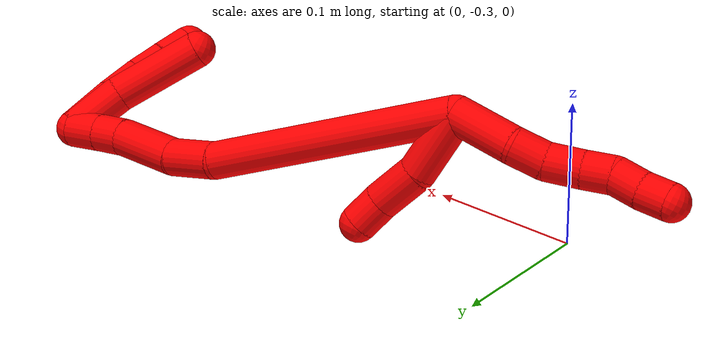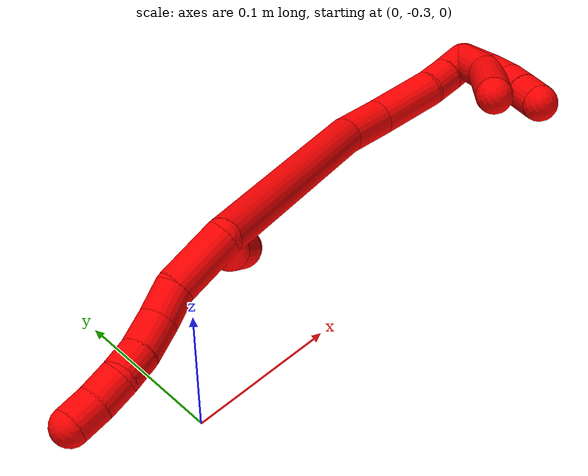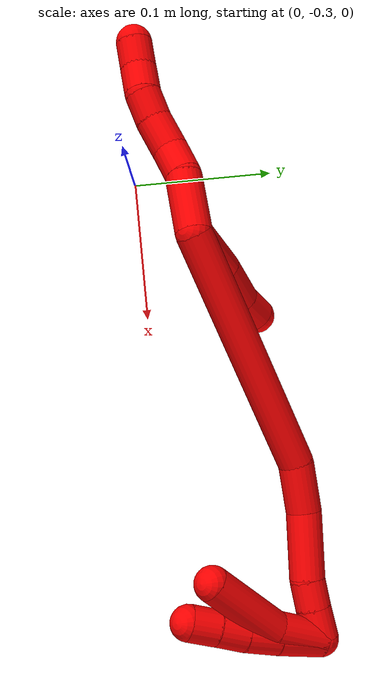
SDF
<sdf version="1.7">
 <world name="default">
  <model name="2">
   <static>0</static>
   <link name="2">
    <collision name="collision-cylinder-e_1_2_8">
     <pose>-0.020827 -0.005021 0.000419 1.48746 -1.33346 -1.25324</pose>
     <geometry><cylinder><radius>0.0125</radius><length>0.042856</length></cylinder></geometry>
     <surface>
      <friction><ode><mu>1.16</mu><mu2>1.16</mu2><slip1>0</slip1><slip2>0</slip2></ode></friction>
      <contact><ode><kp>1e+06</kp><kd>1</kd><max_vel>0</max_vel><min_depth>0.001</min_depth></ode></contact>
     </surface>
    </collision>
    <visual name="visual-cylinder-e_1_2_8">
     <pose>-0.020827 -0.005021 0.000419 1.48746 -1.33346 -1.25324</pose>
     <geometry><cylinder><radius>0.0125</radius><length>0.042856</length></cylinder></geometry>
     <material><ambient>1 0 0 1</ambient></material>
    </visual>
    <collision name="collision-cylinder-e_2_8_9">
     <pose>-0.052821 -0.00957 0.000661 -1.93104 -1.52571 1.88851</pose>
     <geometry><cylinder><radius>0.0125</radius><length>0.022357</length></cylinder></geometry>
     <surface>
      <friction><ode><mu>1.16</mu><mu2>1.16</mu2><slip1>0</slip1><slip2>0</slip2></ode></friction>
      <contact><ode><kp>1e+06</kp><kd>1</kd><max_vel>0</max_vel><min_depth>0.001</min_depth></ode></contact>
     </surface>
    </collision>
    <visual name="visual-cylinder-e_2_8_9">
     <pose>-0.052821 -0.00957 0.000661 -1.93104 -1.52571 1.88851</pose>
     <geometry><cylinder><radius>0.0125</radius><length>0.022357</length></cylinder></geometry>
     <material><ambient>1 0 0 1</ambient></material>
    </visual>
    <collision name="collision-cylinder-e_3_9_10">
     <pose>-0.075788 -0.009599 -0.002636 2.98227 -1.30912 -2.93429</pose>
     <geometry><cylinder><radius>0.0125</radius><length>0.02443</length></cylinder></geometry>
     <surface>
      <friction><ode><mu>1.16</mu><mu2>1.16</mu2><slip1>0</slip1><slip2>0</slip2></ode></friction>
      <contact><ode><kp>1e+06</kp><kd>1</kd><max_vel>0</max_vel><min_depth>0.001</min_depth></ode></contact>
     </surface>
    </collision>
    <visual name="visual-cylinder-e_3_9_10">
     <pose>-0.075788 -0.009599 -0.002636 2.98227 -1.30912 -2.93429</pose>
     <geometry><cylinder><radius>0.0125</radius><length>0.02443</length></cylinder></geometry>
     <material><ambient>1 0 0 1</ambient></material>
    </visual>
    <collision name="collision-cylinder-e_4_10_11">
     <pose>-0.097149 -0.011971 -0.008637 2.56568 -1.22599 -2.34448</pose>
     <geometry><cylinder><radius>0.0125</radius><length>0.02032</length></cylinder></geometry>
     <surface>
      <friction><ode><mu>1.16</mu><mu2>1.16</mu2><slip1>0</slip1><slip2>0</slip2></ode></friction>
      <contact><ode><kp>1e+06</kp><kd>1</kd><max_vel>0</max_vel><min_depth>0.001</min_depth></ode></contact>
     </surface>
    </collision>
    <visual name="visual-cylinder-e_4_10_11">
     <pose>-0.097149 -0.011971 -0.008637 2.56568 -1.22599 -2.34448</pose>
     <geometry><cylinder><radius>0.0125</radius><length>0.02032</length></cylinder></geometry>
     <material><ambient>1 0 0 1</ambient></material>
    </visual>
    <collision name="collision-cylinder-e_5_11_12">
     <pose>-0.116473 -0.016067 -0.011251 1.45176 -1.34507 -1.23057</pose>
     <geometry><cylinder><radius>0.0125</radius><length>0.020032</length></cylinder></geometry>
     <surface>
      <friction><ode><mu>1.16</mu><mu2>1.16</mu2><slip1>0</slip1><slip2>0</slip2></ode></friction>
      <contact><ode><kp>1e+06</kp><kd>1</kd><max_vel>0</max_vel><min_depth>0.001</min_depth></ode></contact>
     </surface>
    </collision>
    <visual name="visual-cylinder-e_5_11_12">
     <pose>-0.116473 -0.016067 -0.011251 1.45176 -1.34507 -1.23057</pose>
     <geometry><cylinder><radius>0.0125</radius><length>0.020032</length></cylinder></geometry>
     <material><ambient>1 0 0 1</ambient></material>
    </visual>
    <collision name="collision-cylinder-e_6_12_6">
     <pose>-0.135708 -0.021387 -0.011842 1.84118 -1.24407 -1.51187</pose>
     <geometry><cylinder><radius>0.0125</radius><length>0.020006</length></cylinder></geometry>
     <surface>
      <friction><ode><mu>1.16</mu><mu2>1.16</mu2><slip1>0</slip1><slip2>0</slip2></ode></friction>
      <contact><ode><kp>1e+06</kp><kd>1</kd><max_vel>0</max_vel><min_depth>0.001</min_depth></ode></contact>
     </surface>
    </collision>
    <visual name="visual-cylinder-e_6_12_6">
     <pose>-0.135708 -0.021387 -0.011842 1.84118 -1.24407 -1.51187</pose>
     <geometry><cylinder><radius>0.0125</radius><length>0.020006</length></cylinder></geometry>
     <material><ambient>1 0 0 1</ambient></material>
    </visual>
    <collision name="collision-cylinder-e_1_2_13">
     <pose>0.003701 0.006905 0.022001 -0.304131 0.159147 -0.024439</pose>
     <geometry><cylinder><radius>0.0125</radius><length>0.046709</length></cylinder></geometry>
     <surface>
      <friction><ode><mu>1.16</mu><mu2>1.16</mu2><slip1>0</slip1><slip2>0</slip2></ode></friction>
      <contact><ode><kp>1e+06</kp><kd>1</kd><max_vel>0</max_vel><min_depth>0.001</min_depth></ode></contact>
     </surface>
    </collision>
    <visual name="visual-cylinder-e_1_2_13">
     <pose>0.003701 0.006905 0.022001 -0.304131 0.159147 -0.024439</pose>
     <geometry><cylinder><radius>0.0125</radius><length>0.046709</length></cylinder></geometry>
     <material><ambient>1 0 0 1</ambient></material>
    </visual>
    <collision name="collision-cylinder-e_2_13_14">
     <pose>0.014252 0.018958 0.057773 -0.357689 0.436008 -0.08005</pose>
     <geometry><cylinder><radius>0.0125</radius><length>0.032437</length></cylinder></geometry>
     <surface>
      <friction><ode><mu>1.16</mu><mu2>1.16</mu2><slip1>0</slip1><slip2>0</slip2></ode></friction>
      <contact><ode><kp>1e+06</kp><kd>1</kd><max_vel>0</max_vel><min_depth>0.001</min_depth></ode></contact>
     </surface>
    </collision>
    <visual name="visual-cylinder-e_2_13_14">
     <pose>0.014252 0.018958 0.057773 -0.357689 0.436008 -0.08005</pose>
     <geometry><cylinder><radius>0.0125</radius><length>0.032437</length></cylinder></geometry>
     <material><ambient>1 0 0 1</ambient></material>
    </visual>
    <collision name="collision-cylinder-e_3_14_5">
     <pose>0.024635 0.025582 0.081242 -0.151092 0.345748 -0.026432</pose>
     <geometry><cylinder><radius>0.0125</radius><length>0.020854</length></cylinder></geometry>
     <surface>
      <friction><ode><mu>1.16</mu><mu2>1.16</mu2><slip1>0</slip1><slip2>0</slip2></ode></friction>
      <contact><ode><kp>1e+06</kp><kd>1</kd><max_vel>0</max_vel><min_depth>0.001</min_depth></ode></contact>
     </surface>
    </collision>
    <visual name="visual-cylinder-e_3_14_5">
     <pose>0.024635 0.025582 0.081242 -0.151092 0.345748 -0.026432</pose>
     <geometry><cylinder><radius>0.0125</radius><length>0.020854</length></cylinder></geometry>
     <material><ambient>1 0 0 1</ambient></material>
    </visual>
    <collision name="collision-cylinder-e_1_2_15">
     <pose>0.067342 0.0259 0.050114 -0.477006 0.873496 -0.226026</pose>
     <geometry><cylinder><radius>0.0125</radius><length>0.175695</length></cylinder></geometry>
     <surface>
      <friction><ode><mu>1.16</mu><mu2>1.16</mu2><slip1>0</slip1><slip2>0</slip2></ode></friction>
      <contact><ode><kp>1e+06</kp><kd>1</kd><max_vel>0</max_vel><min_depth>0.001</min_depth></ode></contact>
     </surface>
    </collision>
    <visual name="visual-cylinder-e_1_2_15">
     <pose>0.067342 0.0259 0.050114 -0.477006 0.873496 -0.226026</pose>
     <geometry><cylinder><radius>0.0125</radius><length>0.175695</length></cylinder></geometry>
     <material><ambient>1 0 0 1</ambient></material>
    </visual>
    <collision name="collision-cylinder-e_2_15_16">
     <pose>0.149126 0.059767 0.106166 -0.930427 0.968128 -0.51608</pose>
     <geometry><cylinder><radius>0.0125</radius><length>0.03506</length></cylinder></geometry>
     <surface>
      <friction><ode><mu>1.16</mu><mu2>1.16</mu2><slip1>0</slip1><slip2>0</slip2></ode></friction>
      <contact><ode><kp>1e+06</kp><kd>1</kd><max_vel>0</max_vel><min_depth>0.001</min_depth></ode></contact>
     </surface>
    </collision>
    <visual name="visual-cylinder-e_2_15_16">
     <pose>0.149126 0.059767 0.106166 -0.930427 0.968128 -0.51608</pose>
     <geometry><cylinder><radius>0.0125</radius><length>0.03506</length></cylinder></geometry>
     <material><ambient>1 0 0 1</ambient></material>
    </visual>
    <collision name="collision-cylinder-e_3_16_17">
     <pose>0.184096 0.078755 0.11498 -1.31542 1.06428 -0.853696</pose>
     <geometry><cylinder><radius>0.0125</radius><length>0.046951</length></cylinder></geometry>
     <surface>
      <friction><ode><mu>1.16</mu><mu2>1.16</mu2><slip1>0</slip1><slip2>0</slip2></ode></friction>
      <contact><ode><kp>1e+06</kp><kd>1</kd><max_vel>0</max_vel><min_depth>0.001</min_depth></ode></contact>
     </surface>
    </collision>
    <visual name="visual-cylinder-e_3_16_17">
     <pose>0.184096 0.078755 0.11498 -1.31542 1.06428 -0.853696</pose>
     <geometry><cylinder><radius>0.0125</radius><length>0.046951</length></cylinder></geometry>
     <material><ambient>1 0 0 1</ambient></material>
    </visual>
    <collision name="collision-cylinder-e_4_17_18">
     <pose>0.213565 0.093513 0.120536 -0.948888 1.09566 -0.607303</pose>
     <geometry><cylinder><radius>0.0125</radius><length>0.020109</length></cylinder></geometry>
     <surface>
      <friction><ode><mu>1.16</mu><mu2>1.16</mu2><slip1>0</slip1><slip2>0</slip2></ode></friction>
      <contact><ode><kp>1e+06</kp><kd>1</kd><max_vel>0</max_vel><min_depth>0.001</min_depth></ode></contact>
     </surface>
    </collision>
    <visual name="visual-cylinder-e_4_17_18">
     <pose>0.213565 0.093513 0.120536 -0.948888 1.09566 -0.607303</pose>
     <geometry><cylinder><radius>0.0125</radius><length>0.020109</length></cylinder></geometry>
     <material><ambient>1 0 0 1</ambient></material>
    </visual>
    <collision name="collision-cylinder-e_5_18_1">
     <pose>0.232415 0.101074 0.126412 -0.874562 1.10485 -0.561131</pose>
     <geometry><cylinder><radius>0.0125</radius><length>0.022184</length></cylinder></geometry>
     <surface>
      <friction><ode><mu>1.16</mu><mu2>1.16</mu2><slip1>0</slip1><slip2>0</slip2></ode></friction>
      <contact><ode><kp>1e+06</kp><kd>1</kd><max_vel>0</max_vel><min_depth>0.001</min_depth></ode></contact>
     </surface>
    </collision>
    <visual name="visual-cylinder-e_5_18_1">
     <pose>0.232415 0.101074 0.126412 -0.874562 1.10485 -0.561131</pose>
     <geometry><cylinder><radius>0.0125</radius><length>0.022184</length></cylinder></geometry>
     <material><ambient>1 0 0 1</ambient></material>
    </visual>
    <collision name="collision-cylinder-e_1_1_19">
     <pose>0.235185 0.110421 0.112767 -2.82472 -0.382942 1.7629</pose>
     <geometry><cylinder><radius>0.0125</radius><length>0.038215</length></cylinder></geometry>
     <surface>
      <friction><ode><mu>1.16</mu><mu2>1.16</mu2><slip1>0</slip1><slip2>0</slip2></ode></friction>
      <contact><ode><kp>1e+06</kp><kd>1</kd><max_vel>0</max_vel><min_depth>0.001</min_depth></ode></contact>
     </surface>
    </collision>
    <visual name="visual-cylinder-e_1_1_19">
     <pose>0.235185 0.110421 0.112767 -2.82472 -0.382942 1.7629</pose>
     <geometry><cylinder><radius>0.0125</radius><length>0.038215</length></cylinder></geometry>
     <material><ambient>1 0 0 1</ambient></material>
    </visual>
    <collision name="collision-cylinder-e_2_19_4">
     <pose>0.210815 0.11597 0.070285 -3.14054 -0.591699 3.13813</pose>
     <geometry><cylinder><radius>0.0125</radius><length>0.061785</length></cylinder></geometry>
     <surface>
      <friction><ode><mu>1.16</mu><mu2>1.16</mu2><slip1>0</slip1><slip2>0</slip2></ode></friction>
      <contact><ode><kp>1e+06</kp><kd>1</kd><max_vel>0</max_vel><min_depth>0.001</min_depth></ode></contact>
     </surface>
    </collision>
    <visual name="visual-cylinder-e_2_19_4">
     <pose>0.210815 0.11597 0.070285 -3.14054 -0.591699 3.13813</pose>
     <geometry><cylinder><radius>0.0125</radius><length>0.061785</length></cylinder></geometry>
     <material><ambient>1 0 0 1</ambient></material>
    </visual>
    <collision name="collision-cylinder-e_1_1_20">
     <pose>0.237484 0.11219 0.114906 -2.68116 -0.286853 1.10448</pose>
     <geometry><cylinder><radius>0.0125</radius><length>0.03422</length></cylinder></geometry>
     <surface>
      <friction><ode><mu>1.16</mu><mu2>1.16</mu2><slip1>0</slip1><slip2>0</slip2></ode></friction>
      <contact><ode><kp>1e+06</kp><kd>1</kd><max_vel>0</max_vel><min_depth>0.001</min_depth></ode></contact>
     </surface>
    </collision>
    <visual name="visual-cylinder-e_1_1_20">
     <pose>0.237484 0.11219 0.114906 -2.68116 -0.286853 1.10448</pose>
     <geometry><cylinder><radius>0.0125</radius><length>0.03422</length></cylinder></geometry>
     <material><ambient>1 0 0 1</ambient></material>
    </visual>
    <collision name="collision-cylinder-e_2_20_21">
     <pose>0.228562 0.124519 0.0899 -2.68695 -0.341817 1.28203</pose>
     <geometry><cylinder><radius>0.0125</radius><length>0.024349</length></cylinder></geometry>
     <surface>
      <friction><ode><mu>1.16</mu><mu2>1.16</mu2><slip1>0</slip1><slip2>0</slip2></ode></friction>
      <contact><ode><kp>1e+06</kp><kd>1</kd><max_vel>0</max_vel><min_depth>0.001</min_depth></ode></contact>
     </surface>
    </collision>
    <visual name="visual-cylinder-e_2_20_21">
     <pose>0.228562 0.124519 0.0899 -2.68695 -0.341817 1.28203</pose>
     <geometry><cylinder><radius>0.0125</radius><length>0.024349</length></cylinder></geometry>
     <material><ambient>1 0 0 1</ambient></material>
    </visual>
    <collision name="collision-cylinder-e_3_21_22">
     <pose>0.220188 0.13336 0.070883 -2.72989 -0.424214 1.60162</pose>
     <geometry><cylinder><radius>0.0125</radius><length>0.020862</length></cylinder></geometry>
     <surface>
      <friction><ode><mu>1.16</mu><mu2>1.16</mu2><slip1>0</slip1><slip2>0</slip2></ode></friction>
      <contact><ode><kp>1e+06</kp><kd>1</kd><max_vel>0</max_vel><min_depth>0.001</min_depth></ode></contact>
     </surface>
    </collision>
    <visual name="visual-cylinder-e_3_21_22">
     <pose>0.220188 0.13336 0.070883 -2.72989 -0.424214 1.60162</pose>
     <geometry><cylinder><radius>0.0125</radius><length>0.020862</length></cylinder></geometry>
     <material><ambient>1 0 0 1</ambient></material>
    </visual>
    <collision name="collision-cylinder-e_4_22_3">
     <pose>0.211639 0.141349 0.053795 -2.67821 -0.426597 1.48539</pose>
     <geometry><cylinder><radius>0.0125</radius><length>0.020569</length></cylinder></geometry>
     <surface>
      <friction><ode><mu>1.16</mu><mu2>1.16</mu2><slip1>0</slip1><slip2>0</slip2></ode></friction>
      <contact><ode><kp>1e+06</kp><kd>1</kd><max_vel>0</max_vel><min_depth>0.001</min_depth></ode></contact>
     </surface>
    </collision>
    <visual name="visual-cylinder-e_4_22_3">
     <pose>0.211639 0.141349 0.053795 -2.67821 -0.426597 1.48539</pose>
     <geometry><cylinder><radius>0.0125</radius><length>0.020569</length></cylinder></geometry>
     <material><ambient>1 0 0 1</ambient></material>
    </visual>
    <collision name="collision-sphere-3">
     <pose>0.207383 0.145534 0.045419 0 -0 0</pose>
     <geometry><sphere><radius>0.0125</radius></sphere></geometry>
     <surface>
      <friction><ode><mu>1.16</mu><mu2>1.16</mu2><slip1>0</slip1><slip2>0</slip2></ode></friction>
      <contact><ode><kp>1e+06</kp><kd>1</kd><max_vel>0</max_vel><min_depth>0.001</min_depth></ode></contact>
     </surface>
    </collision>
    <visual name="visual-sphere-3">
     <pose>0.207383 0.145534 0.045419 0 -0 0</pose>
     <geometry><sphere><radius>0.0125</radius></sphere></geometry>
     <material><ambient>1 0 0 1</ambient></material>
    </visual>
    <collision name="collision-sphere-22">
     <pose>0.215894 0.137164 0.06217 0 -0 0</pose>
     <geometry><sphere><radius>0.0125</radius></sphere></geometry>
     <surface>
      <friction><ode><mu>1.16</mu><mu2>1.16</mu2><slip1>0</slip1><slip2>0</slip2></ode></friction>
      <contact><ode><kp>1e+06</kp><kd>1</kd><max_vel>0</max_vel><min_depth>0.001</min_depth></ode></contact>
     </surface>
    </collision>
    <visual name="visual-sphere-22">
     <pose>0.215894 0.137164 0.06217 0 -0 0</pose>
     <geometry><sphere><radius>0.0125</radius></sphere></geometry>
     <material><ambient>1 0 0 1</ambient></material>
    </visual>
    <collision name="collision-sphere-21">
     <pose>0.224481 0.129556 0.079595 0 -0 0</pose>
     <geometry><sphere><radius>0.0125</radius></sphere></geometry>
     <surface>
      <friction><ode><mu>1.16</mu><mu2>1.16</mu2><slip1>0</slip1><slip2>0</slip2></ode></friction>
      <contact><ode><kp>1e+06</kp><kd>1</kd><max_vel>0</max_vel><min_depth>0.001</min_depth></ode></contact>
     </surface>
    </collision>
    <visual name="visual-sphere-21">
     <pose>0.224481 0.129556 0.079595 0 -0 0</pose>
     <geometry><sphere><radius>0.0125</radius></sphere></geometry>
     <material><ambient>1 0 0 1</ambient></material>
    </visual>
    <collision name="collision-sphere-20">
     <pose>0.232643 0.119482 0.100205 0 -0 0</pose>
     <geometry><sphere><radius>0.0125</radius></sphere></geometry>
     <surface>
      <friction><ode><mu>1.16</mu><mu2>1.16</mu2><slip1>0</slip1><slip2>0</slip2></ode></friction>
      <contact><ode><kp>1e+06</kp><kd>1</kd><max_vel>0</max_vel><min_depth>0.001</min_depth></ode></contact>
     </surface>
    </collision>
    <visual name="visual-sphere-20">
     <pose>0.232643 0.119482 0.100205 0 -0 0</pose>
     <geometry><sphere><radius>0.0125</radius></sphere></geometry>
     <material><ambient>1 0 0 1</ambient></material>
    </visual>
    <collision name="collision-sphere-4">
     <pose>0.193584 0.115997 0.044644 0 -0 0</pose>
     <geometry><sphere><radius>0.0125</radius></sphere></geometry>
     <surface>
      <friction><ode><mu>1.16</mu><mu2>1.16</mu2><slip1>0</slip1><slip2>0</slip2></ode></friction>
      <contact><ode><kp>1e+06</kp><kd>1</kd><max_vel>0</max_vel><min_depth>0.001</min_depth></ode></contact>
     </surface>
    </collision>
    <visual name="visual-sphere-4">
     <pose>0.193584 0.115997 0.044644 0 -0 0</pose>
     <geometry><sphere><radius>0.0125</radius></sphere></geometry>
     <material><ambient>1 0 0 1</ambient></material>
    </visual>
    <collision name="collision-sphere-12">
     <pose>-0.126234 -0.018293 -0.010985 0 -0 0</pose>
     <geometry><sphere><radius>0.0125</radius></sphere></geometry>
     <surface>
      <friction><ode><mu>1.16</mu><mu2>1.16</mu2><slip1>0</slip1><slip2>0</slip2></ode></friction>
      <contact><ode><kp>1e+06</kp><kd>1</kd><max_vel>0</max_vel><min_depth>0.001</min_depth></ode></contact>
     </surface>
    </collision>
    <visual name="visual-sphere-12">
     <pose>-0.126234 -0.018293 -0.010985 0 -0 0</pose>
     <geometry><sphere><radius>0.0125</radius></sphere></geometry>
     <material><ambient>1 0 0 1</ambient></material>
    </visual>
    <collision name="collision-sphere-11">
     <pose>-0.106711 -0.013841 -0.011517 0 -0 0</pose>
     <geometry><sphere><radius>0.0125</radius></sphere></geometry>
     <surface>
      <friction><ode><mu>1.16</mu><mu2>1.16</mu2><slip1>0</slip1><slip2>0</slip2></ode></friction>
      <contact><ode><kp>1e+06</kp><kd>1</kd><max_vel>0</max_vel><min_depth>0.001</min_depth></ode></contact>
     </surface>
    </collision>
    <visual name="visual-sphere-11">
     <pose>-0.106711 -0.013841 -0.011517 0 -0 0</pose>
     <geometry><sphere><radius>0.0125</radius></sphere></geometry>
     <material><ambient>1 0 0 1</ambient></material>
    </visual>
    <collision name="collision-sphere-10">
     <pose>-0.087587 -0.010101 -0.005756 0 -0 0</pose>
     <geometry><sphere><radius>0.0125</radius></sphere></geometry>
     <surface>
      <friction><ode><mu>1.16</mu><mu2>1.16</mu2><slip1>0</slip1><slip2>0</slip2></ode></friction>
      <contact><ode><kp>1e+06</kp><kd>1</kd><max_vel>0</max_vel><min_depth>0.001</min_depth></ode></contact>
     </surface>
    </collision>
    <visual name="visual-sphere-10">
     <pose>-0.087587 -0.010101 -0.005756 0 -0 0</pose>
     <geometry><sphere><radius>0.0125</radius></sphere></geometry>
     <material><ambient>1 0 0 1</ambient></material>
    </visual>
    <collision name="collision-sphere-9">
     <pose>-0.063989 -0.009098 0.000484 0 -0 0</pose>
     <geometry><sphere><radius>0.0125</radius></sphere></geometry>
     <surface>
      <friction><ode><mu>1.16</mu><mu2>1.16</mu2><slip1>0</slip1><slip2>0</slip2></ode></friction>
      <contact><ode><kp>1e+06</kp><kd>1</kd><max_vel>0</max_vel><min_depth>0.001</min_depth></ode></contact>
     </surface>
    </collision>
    <visual name="visual-sphere-9">
     <pose>-0.063989 -0.009098 0.000484 0 -0 0</pose>
     <geometry><sphere><radius>0.0125</radius></sphere></geometry>
     <material><ambient>1 0 0 1</ambient></material>
    </visual>
    <collision name="collision-sphere-2">
     <geometry><sphere><radius>0.0125</radius></sphere></geometry>
     <surface>
      <friction><ode><mu>1.16</mu><mu2>1.16</mu2><slip1>0</slip1><slip2>0</slip2></ode></friction>
      <contact><ode><kp>1e+06</kp><kd>1</kd><max_vel>0</max_vel><min_depth>0.001</min_depth></ode></contact>
     </surface>
    </collision>
    <visual name="visual-sphere-2">
     <geometry><sphere><radius>0.0125</radius></sphere></geometry>
     <material><ambient>1 0 0 1</ambient></material>
    </visual>
    <collision name="collision-sphere-19">
     <pose>0.228046 0.115943 0.095926 0 -0 0</pose>
     <geometry><sphere><radius>0.0125</radius></sphere></geometry>
     <surface>
      <friction><ode><mu>1.16</mu><mu2>1.16</mu2><slip1>0</slip1><slip2>0</slip2></ode></friction>
      <contact><ode><kp>1e+06</kp><kd>1</kd><max_vel>0</max_vel><min_depth>0.001</min_depth></ode></contact>
     </surface>
    </collision>
    <visual name="visual-sphere-19">
     <pose>0.228046 0.115943 0.095926 0 -0 0</pose>
     <geometry><sphere><radius>0.0125</radius></sphere></geometry>
     <material><ambient>1 0 0 1</ambient></material>
    </visual>
    <collision name="collision-sphere-8">
     <pose>-0.041654 -0.010041 0.000839 0 -0 0</pose>
     <geometry><sphere><radius>0.0125</radius></sphere></geometry>
     <surface>
      <friction><ode><mu>1.16</mu><mu2>1.16</mu2><slip1>0</slip1><slip2>0</slip2></ode></friction>
      <contact><ode><kp>1e+06</kp><kd>1</kd><max_vel>0</max_vel><min_depth>0.001</min_depth></ode></contact>
     </surface>
    </collision>
    <visual name="visual-sphere-8">
     <pose>-0.041654 -0.010041 0.000839 0 -0 0</pose>
     <geometry><sphere><radius>0.0125</radius></sphere></geometry>
     <material><ambient>1 0 0 1</ambient></material>
    </visual>
    <collision name="collision-sphere-6">
     <pose>-0.145182 -0.02448 -0.012699 0 -0 0</pose>
     <geometry><sphere><radius>0.0125</radius></sphere></geometry>
     <surface>
      <friction><ode><mu>1.16</mu><mu2>1.16</mu2><slip1>0</slip1><slip2>0</slip2></ode></friction>
      <contact><ode><kp>1e+06</kp><kd>1</kd><max_vel>0</max_vel><min_depth>0.001</min_depth></ode></contact>
     </surface>
    </collision>
    <visual name="visual-sphere-6">
     <pose>-0.145182 -0.02448 -0.012699 0 -0 0</pose>
     <geometry><sphere><radius>0.0125</radius></sphere></geometry>
     <material><ambient>1 0 0 1</ambient></material>
    </visual>
    <collision name="collision-sphere-13">
     <pose>0.007402 0.013811 0.044002 0 -0 0</pose>
     <geometry><sphere><radius>0.0125</radius></sphere></geometry>
     <surface>
      <friction><ode><mu>1.16</mu><mu2>1.16</mu2><slip1>0</slip1><slip2>0</slip2></ode></friction>
      <contact><ode><kp>1e+06</kp><kd>1</kd><max_vel>0</max_vel><min_depth>0.001</min_depth></ode></contact>
     </surface>
    </collision>
    <visual name="visual-sphere-13">
     <pose>0.007402 0.013811 0.044002 0 -0 0</pose>
     <geometry><sphere><radius>0.0125</radius></sphere></geometry>
     <material><ambient>1 0 0 1</ambient></material>
    </visual>
    <collision name="collision-sphere-14">
     <pose>0.021101 0.024105 0.071544 0 -0 0</pose>
     <geometry><sphere><radius>0.0125</radius></sphere></geometry>
     <surface>
      <friction><ode><mu>1.16</mu><mu2>1.16</mu2><slip1>0</slip1><slip2>0</slip2></ode></friction>
      <contact><ode><kp>1e+06</kp><kd>1</kd><max_vel>0</max_vel><min_depth>0.001</min_depth></ode></contact>
     </surface>
    </collision>
    <visual name="visual-sphere-14">
     <pose>0.021101 0.024105 0.071544 0 -0 0</pose>
     <geometry><sphere><radius>0.0125</radius></sphere></geometry>
     <material><ambient>1 0 0 1</ambient></material>
    </visual>
    <collision name="collision-sphere-5">
     <pose>0.028169 0.027058 0.09094 0 -0 0</pose>
     <geometry><sphere><radius>0.0125</radius></sphere></geometry>
     <surface>
      <friction><ode><mu>1.16</mu><mu2>1.16</mu2><slip1>0</slip1><slip2>0</slip2></ode></friction>
      <contact><ode><kp>1e+06</kp><kd>1</kd><max_vel>0</max_vel><min_depth>0.001</min_depth></ode></contact>
     </surface>
    </collision>
    <visual name="visual-sphere-5">
     <pose>0.028169 0.027058 0.09094 0 -0 0</pose>
     <geometry><sphere><radius>0.0125</radius></sphere></geometry>
     <material><ambient>1 0 0 1</ambient></material>
    </visual>
    <collision name="collision-sphere-15">
     <pose>0.134684 0.051799 0.100229 0 -0 0</pose>
     <geometry><sphere><radius>0.0125</radius></sphere></geometry>
     <surface>
      <friction><ode><mu>1.16</mu><mu2>1.16</mu2><slip1>0</slip1><slip2>0</slip2></ode></friction>
      <contact><ode><kp>1e+06</kp><kd>1</kd><max_vel>0</max_vel><min_depth>0.001</min_depth></ode></contact>
     </surface>
    </collision>
    <visual name="visual-sphere-15">
     <pose>0.134684 0.051799 0.100229 0 -0 0</pose>
     <geometry><sphere><radius>0.0125</radius></sphere></geometry>
     <material><ambient>1 0 0 1</ambient></material>
    </visual>
    <collision name="collision-sphere-16">
     <pose>0.163567 0.067735 0.112103 0 -0 0</pose>
     <geometry><sphere><radius>0.0125</radius></sphere></geometry>
     <surface>
      <friction><ode><mu>1.16</mu><mu2>1.16</mu2><slip1>0</slip1><slip2>0</slip2></ode></friction>
      <contact><ode><kp>1e+06</kp><kd>1</kd><max_vel>0</max_vel><min_depth>0.001</min_depth></ode></contact>
     </surface>
    </collision>
    <visual name="visual-sphere-16">
     <pose>0.163567 0.067735 0.112103 0 -0 0</pose>
     <geometry><sphere><radius>0.0125</radius></sphere></geometry>
     <material><ambient>1 0 0 1</ambient></material>
    </visual>
    <collision name="collision-sphere-17">
     <pose>0.204624 0.089774 0.117857 0 -0 0</pose>
     <geometry><sphere><radius>0.0125</radius></sphere></geometry>
     <surface>
      <friction><ode><mu>1.16</mu><mu2>1.16</mu2><slip1>0</slip1><slip2>0</slip2></ode></friction>
      <contact><ode><kp>1e+06</kp><kd>1</kd><max_vel>0</max_vel><min_depth>0.001</min_depth></ode></contact>
     </surface>
    </collision>
    <visual name="visual-sphere-17">
     <pose>0.204624 0.089774 0.117857 0 -0 0</pose>
     <geometry><sphere><radius>0.0125</radius></sphere></geometry>
     <material><ambient>1 0 0 1</ambient></material>
    </visual>
    <collision name="collision-sphere-18">
     <pose>0.222505 0.097251 0.123216 0 -0 0</pose>
     <geometry><sphere><radius>0.0125</radius></sphere></geometry>
     <surface>
      <friction><ode><mu>1.16</mu><mu2>1.16</mu2><slip1>0</slip1><slip2>0</slip2></ode></friction>
      <contact><ode><kp>1e+06</kp><kd>1</kd><max_vel>0</max_vel><min_depth>0.001</min_depth></ode></contact>
     </surface>
    </collision>
    <visual name="visual-sphere-18">
     <pose>0.222505 0.097251 0.123216 0 -0 0</pose>
     <geometry><sphere><radius>0.0125</radius></sphere></geometry>
     <material><ambient>1 0 0 1</ambient></material>
    </visual>
    <collision name="collision-sphere-1">
     <pose>0.242325 0.104898 0.129608 0 -0 0</pose>
     <geometry><sphere><radius>0.0125</radius></sphere></geometry>
     <surface>
      <friction><ode><mu>1.16</mu><mu2>1.16</mu2><slip1>0</slip1><slip2>0</slip2></ode></friction>
      <contact><ode><kp>1e+06</kp><kd>1</kd><max_vel>0</max_vel><min_depth>0.001</min_depth></ode></contact>
     </surface>
    </collision>
    <visual name="visual-sphere-1">
     <pose>0.242325 0.104898 0.129608 0 -0 0</pose>
     <geometry><sphere><radius>0.0125</radius></sphere></geometry>
     <material><ambient>1 0 0 1</ambient></material>
    </visual>
    <inertial>
     <pose>0.093343 0.050968 0.059251 0 -0 0</pose>
     <mass>0.75</mass>
     <inertia>
      <ixx>0.000235</ixx>
      <ixy>0</ixy>
      <ixz>0</ixz>
      <iyy>0.000454</iyy>
      <iyz>0</iyz>
      <izz>-0.000486</izz>
     </inertia>
    </inertial>
   </link>
   <pose>0.059337 -0.259334 0.089433 -2.60821 -0.330555 0.298711</pose>
  </model>
 </world>
</sdf>
